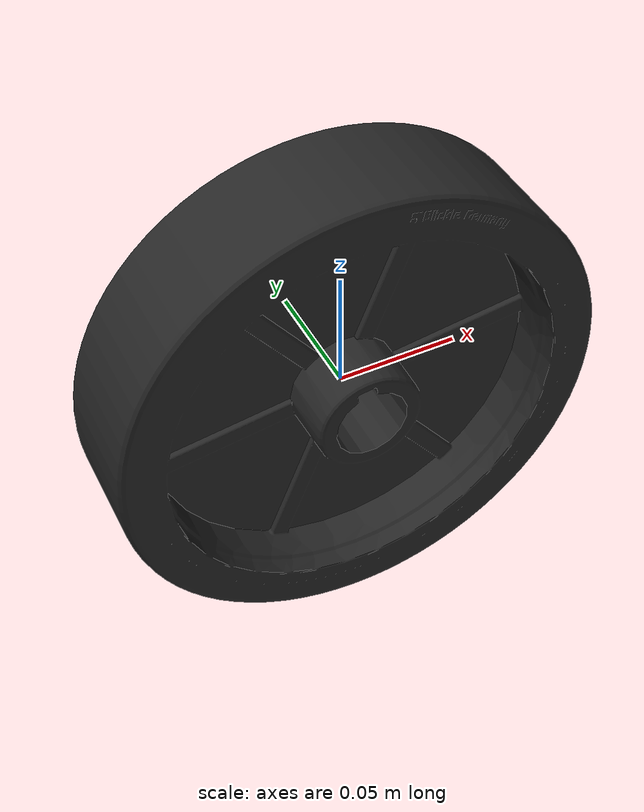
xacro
<robot name="FL_Wheel_link"><link name="FL_Wheel_link">
    <inertial>
      <origin rpy="0 0 0" xyz="-0.00160662480262744 -2.59228543311729E-06 1.49951351856364E-05" />
      <mass value="3.83427523136739" />
      <inertia ixx="0.0296525525807749" ixy="1.51001277133356E-06" ixz="2.35766660656153E-06" iyy="0.0163749526386264" iyz="1.2254511654214E-06" izz="0.0163720506916083" />
    </inertial>
    <visual>
      <origin rpy="0 0 0" xyz="0 0 0" />
      <geometry>
        <mesh filename="package://robotican_description/komodo/meshes/FL_Wheel_link.STL" />
      </geometry>
      <material name="">
        <color rgba="0.15 0.15 0.15 1" />
      </material>
    </visual>
    <collision>
      <origin rpy="0 1.5 0" xyz="0 0 0" />
      <geometry>

        <cylinder length="0.05" radius="0.1" />
      </geometry>
    </collision>
  </link>
  </robot>
